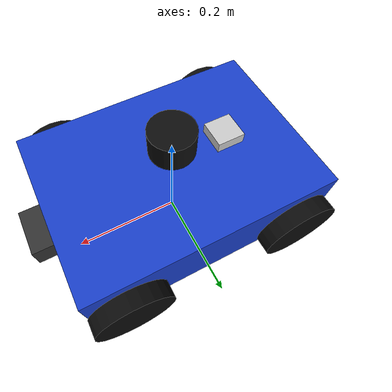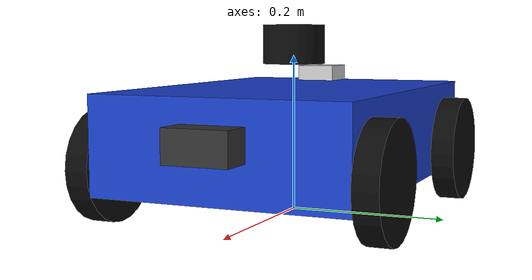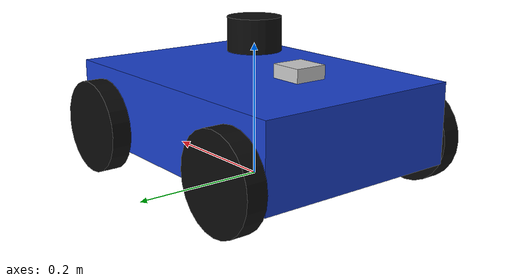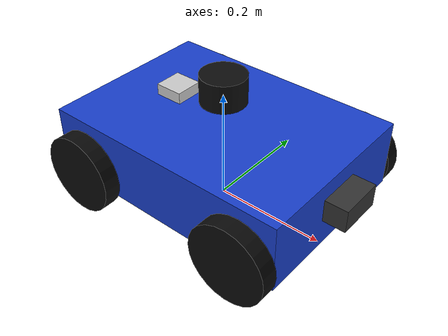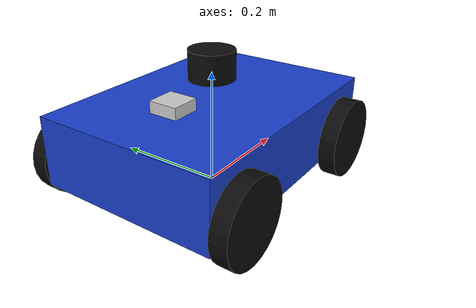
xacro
<?xml version="1.0"?>

<robot
    name="autonomy_robot"
    xmlns:xacro="http://www.ros.org/wiki/xacro">

    <xacro:property
        name="base_length"
        value="0.45"/>

    <xacro:property
        name="base_width"
        value="0.32"/>

    <xacro:property
        name="base_height"
        value="0.12"/>

    <xacro:property
        name="base_mass"
        value="8.0"/>

    <xacro:property
        name="base_center_z"
        value="0.10"/>

    <xacro:property
        name="wheel_radius"
        value="0.07"/>

    <xacro:property
        name="wheel_width"
        value="0.03"/>

    <xacro:property
        name="wheel_mass"
        value="0.8"/>

    <xacro:property
        name="wheel_separation"
        value="0.35"/>

    <xacro:property
        name="wheel_y"
        value="${wheel_separation / 2.0}"/>

    <xacro:property
        name="wheel_base"
        value="0.32"/>

    <xacro:property
        name="wheel_x"
        value="${wheel_base / 2.0}"/>

    <xacro:property
        name="wheel_z"
        value="${wheel_radius - base_center_z}"/>

    <xacro:include
        filename="$(find autonomy_description)/urdf/base.xacro"/>

    <xacro:include
        filename="$(find autonomy_description)/urdf/sensors.xacro"/>

    <xacro:include
        filename="$(find autonomy_description)/urdf/gazebo_plugins.xacro"/>

    <xacro:mobile_base/>

    <xacro:sensor_suite/>

    <xacro:gazebo_plugins/>

</robot>

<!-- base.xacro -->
<robot xmlns:xacro="http://www.ros.org/wiki/xacro">

    <xacro:macro
        name="wheel"
        params="name x y z">

        <link name="${name}_wheel_link">

            <visual>

                <origin
                    xyz="0 0 0"
                    rpy="${pi / 2.0} 0 0"/>

                <geometry>
                    <cylinder
                        radius="${wheel_radius}"
                        length="${wheel_width}"/>
                </geometry>

                <material name="wheel_black">
                    <color rgba="0.04 0.04 0.04 1.0"/>
                </material>

            </visual>

            <collision>

                <origin
                    xyz="0 0 0"
                    rpy="${pi / 2.0} 0 0"/>

                <geometry>
                    <cylinder
                        radius="${wheel_radius}"
                        length="${wheel_width}"/>
                </geometry>

            </collision>

            <inertial>

                <mass value="${wheel_mass}"/>

                <inertia
                    ixx="${wheel_mass / 12.0 *
                           (3.0 * wheel_radius * wheel_radius +
                            wheel_width * wheel_width)}"

                    ixy="0.0"
                    ixz="0.0"

                    iyy="${wheel_mass / 2.0 *
                           wheel_radius * wheel_radius}"

                    iyz="0.0"

                    izz="${wheel_mass / 12.0 *
                           (3.0 * wheel_radius * wheel_radius +
                            wheel_width * wheel_width)}"/>

            </inertial>

        </link>

        <joint
            name="${name}_wheel_joint"
            type="continuous">

            <parent link="base_link"/>
            <child link="${name}_wheel_link"/>

            <origin
                xyz="${x} ${y} ${z}"
                rpy="0 0 0"/>

            <axis xyz="0 1 0"/>

            <dynamics
                damping="0.05"
                friction="0.0"/>

        </joint>

    </xacro:macro>

    <xacro:macro name="mobile_base">

        <link name="base_footprint"/>

        <link name="base_link">

            <visual>

                <geometry>
                    <box
                        size="${base_length}
                              ${base_width}
                              ${base_height}"/>
                </geometry>

                <material name="body_blue">
                    <color rgba="0.10 0.25 0.80 1.0"/>
                </material>

            </visual>

            <collision>

                <geometry>
                    <box
                        size="${base_length}
                              ${base_width}
                              ${base_height}"/>
                </geometry>

            </collision>

            <inertial>

                <mass value="${base_mass}"/>

                <inertia
                    ixx="${base_mass / 12.0 *
                           (base_width * base_width +
                            base_height * base_height)}"

                    ixy="0.0"
                    ixz="0.0"

                    iyy="${base_mass / 12.0 *
                           (base_length * base_length +
                            base_height * base_height)}"

                    iyz="0.0"

                    izz="${base_mass / 12.0 *
                           (base_length * base_length +
                            base_width * base_width)}"/>

            </inertial>

        </link>

        <joint
            name="base_footprint_joint"
            type="fixed">

            <parent link="base_footprint"/>
            <child link="base_link"/>

            <origin
                xyz="0 0 ${base_center_z}"
                rpy="0 0 0"/>

        </joint>

        <xacro:wheel
            name="front_left"
            x="${wheel_x}"
            y="${wheel_y}"
            z="${wheel_z}"/>

        <xacro:wheel
            name="front_right"
            x="${wheel_x}"
            y="${-wheel_y}"
            z="${wheel_z}"/>

        <xacro:wheel
            name="rear_left"
            x="${-wheel_x}"
            y="${wheel_y}"
            z="${wheel_z}"/>

        <xacro:wheel
            name="rear_right"
            x="${-wheel_x}"
            y="${-wheel_y}"
            z="${wheel_z}"/>

    </xacro:macro>

</robot>

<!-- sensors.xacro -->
<robot xmlns:xacro="http://www.ros.org/wiki/xacro">

    <xacro:macro name="sensor_suite">

        <link name="lidar_link">

            <visual>

                <geometry>
                    <cylinder
                        radius="0.04"
                        length="0.05"/>
                </geometry>

                <material name="lidar_black">
                    <color rgba="0.05 0.05 0.05 1.0"/>
                </material>

            </visual>

            <collision>

                <geometry>
                    <cylinder
                        radius="0.04"
                        length="0.05"/>
                </geometry>

            </collision>

            <inertial>

                <mass value="0.20"/>

                <inertia
                    ixx="0.000113"
                    ixy="0"
                    ixz="0"
                    iyy="0.000113"
                    iyz="0"
                    izz="0.000160"/>

            </inertial>

        </link>

        <joint
            name="lidar_joint"
            type="fixed">

            <parent link="base_link"/>
            <child link="lidar_link"/>

            <origin
                xyz="0 0 0.115"
                rpy="0 0 0"/>

        </joint>

        <gazebo reference="lidar_link">

            <sensor
                name="lidar_sensor"
                type="ray">

                <always_on>true</always_on>

                <visualize>false</visualize>

                <update_rate>10</update_rate>

                <ray>

                    <scan>

                        <horizontal>

                            <samples>360</samples>

                            <resolution>1.0</resolution>

                            <min_angle>
                                -3.141592653589793
                            </min_angle>

                            <max_angle>
                                3.141592653589793
                            </max_angle>

                        </horizontal>

                    </scan>

                    <range>

                        <min>0.10</min>

                        <max>8.0</max>

                        <resolution>0.01</resolution>

                    </range>

                    <noise>
                        <type>gaussian</type>
                        <mean>0.0</mean>
                        <stddev>0.0</stddev>
                    </noise>

                </ray>

                <plugin
                    name="lidar_ros_plugin"
                    filename="libgazebo_ros_ray_sensor.so">

                    <ros>
                        <remapping>
                            ~/out:=/scan
                        </remapping>
                    </ros>

                    <output_type>
                        sensor_msgs/LaserScan
                    </output_type>

                    <frame_name>
                        lidar_link
                    </frame_name>

                </plugin>

            </sensor>

        </gazebo>

        <link name="camera_link">

            <visual>

                <geometry>
                    <box size="0.04 0.08 0.04"/>
                </geometry>

                <material name="camera_gray">
                    <color rgba="0.20 0.20 0.20 1.0"/>
                </material>

            </visual>

            <collision>

                <geometry>
                    <box size="0.04 0.08 0.04"/>
                </geometry>

            </collision>

            <inertial>

                <mass value="0.15"/>

                <inertia
                    ixx="0.00010"
                    ixy="0"
                    ixz="0"
                    iyy="0.00004"
                    iyz="0"
                    izz="0.00010"/>

            </inertial>

        </link>

        <joint
            name="camera_joint"
            type="fixed">

            <parent link="base_link"/>
            <child link="camera_link"/>

            <origin
                xyz="0.245 0 0.01"
                rpy="0 0 0"/>

        </joint>

        <link name="camera_optical_frame"/>

        <joint
            name="camera_optical_joint"
            type="fixed">

            <parent link="camera_link"/>
            <child link="camera_optical_frame"/>

            <origin
                xyz="0 0 0"
                rpy="-1.57079632679 0 -1.57079632679"/>

        </joint>

        <gazebo reference="camera_link">

            <sensor
                name="depth_camera"
                type="depth">

                <always_on>true</always_on>

                <visualize>true</visualize>

                <update_rate>5</update_rate>

                <camera name="depth_camera">

                    <horizontal_fov>
                        1.0472
                    </horizontal_fov>

                    <image>

                        <width>320</width>

                        <height>240</height>

                        <format>
                            R8G8B8
                        </format>

                    </image>

                    <clip>

                        <near>0.10</near>

                        <far>8.0</far>

                    </clip>

                    <noise>

                        <type>gaussian</type>

                        <mean>0.0</mean>

                        <stddev>0.002</stddev>

                    </noise>

                </camera>

                <plugin
                    name="depth_camera_ros_plugin"
                    filename="libgazebo_ros_camera.so">

                    <ros>
                        <namespace>/camera</namespace>
                    </ros>

                    <camera_name>
                        depth_camera
                    </camera_name>

                    <frame_name>
                        camera_optical_frame
                    </frame_name>

                    <min_depth>
                        0.10
                    </min_depth>

                    <max_depth>
                        8.0
                    </max_depth>

                </plugin>

            </sensor>

        </gazebo>

        <link name="gps_link">

            <visual>

                <geometry>
                    <box size="0.05 0.05 0.02"/>
                </geometry>

                <material name="gps_white">
                    <color rgba="0.8 0.8 0.8 1.0"/>
                </material>

            </visual>

            <collision>

                <geometry>
                    <box size="0.05 0.05 0.02"/>
                </geometry>

            </collision>

            <inertial>

                <mass value="0.05"/>

                <inertia
                    ixx="0.000011"
                    ixy="0"
                    ixz="0"
                    iyy="0.000011"
                    iyz="0"
                    izz="0.000021"/>

            </inertial>

        </link>

        <joint
            name="gps_joint"
            type="fixed">

            <parent link="base_link"/>
            <child link="gps_link"/>

            <origin
                xyz="-0.10 0 0.075"
                rpy="0 0 0"/>

        </joint>

        <gazebo reference="gps_link">

            <sensor
                name="gps_sensor"
                type="gps">

                <always_on>true</always_on>

                <update_rate>5</update_rate>

                <gps>

                    <position_sensing>

                        <horizontal>

                            <noise type="gaussian">

                                <mean>0.0</mean>

                                <stddev>0.00001</stddev>

                            </noise>

                        </horizontal>

                        <vertical>

                            <noise type="gaussian">

                                <mean>0.0</mean>

                                <stddev>0.00001</stddev>

                            </noise>

                        </vertical>

                    </position_sensing>

                </gps>

                <plugin
                    name="gps_ros_plugin"
                    filename="libgazebo_ros_gps_sensor.so">

                    <ros>

                        <remapping>
                            ~/out:=/gps/fix
                        </remapping>

                    </ros>

                    <frame_name>
                        gps_link
                    </frame_name>

                </plugin>

            </sensor>

        </gazebo>

    </xacro:macro>

</robot>
